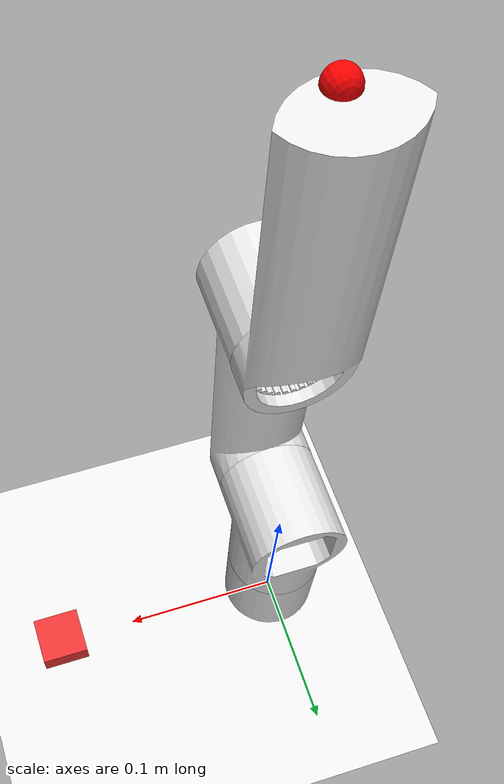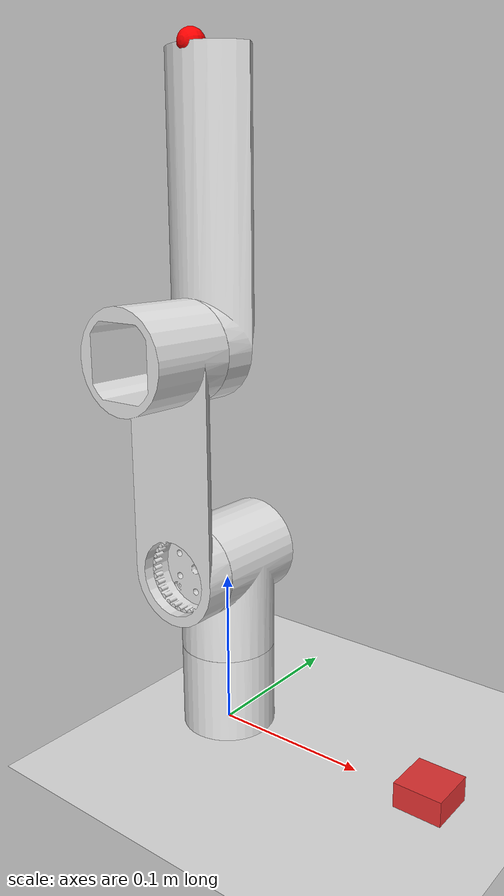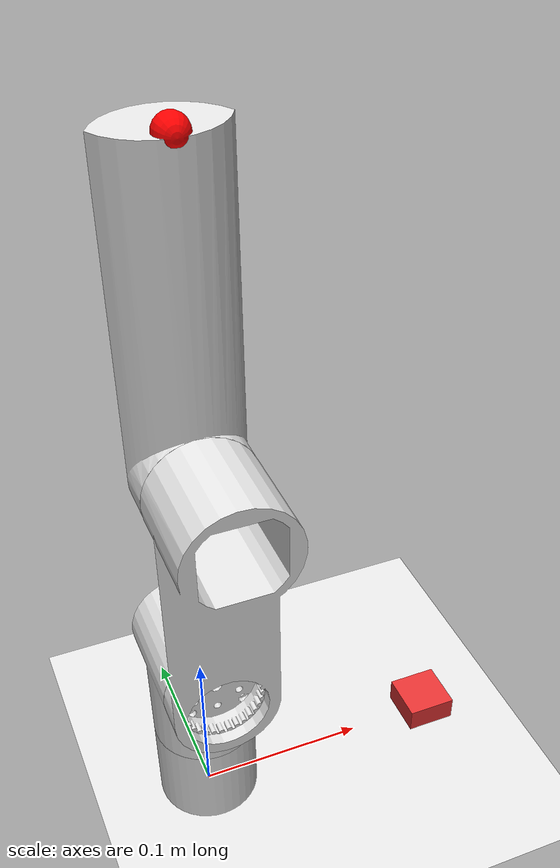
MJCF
<mujoco model="arm-v6-ik">
  <compiler angle="radian" eulerseq="XYZ"/>

  <option gravity="0 0 -9.81" timestep="0.002"/>

  <default>
    <joint damping="0.5" frictionloss="0.05"/>
  </default>

  <asset>
    <mesh name="base_link" content_type="model/stl" file="meshes/base_link.STL"/>
    <mesh name="rotary" content_type="model/stl" file="meshes/rotary.STL"/>
    <mesh name="shoulder" content_type="model/stl" file="meshes/shoulder.STL"/>
    <mesh name="elbow" content_type="model/stl" file="meshes/elbow.STL"/>
  </asset>

  <worldbody>
    <light diffuse="0.8 0.8 0.8" pos="0 0 2" dir="0 0 -1"/>
    <geom name="floor" type="plane" size="1 1 0.05" rgba="0.9 0.9 0.9 1"/>

    <body name="arm_root" pos="0 0 0.05">
      <inertial pos="2.3661e-18 -0.019937 2.4154e-18" mass="0.067122"
                fullinertia="4.1725e-05 4.5278e-05 4.1725e-05 9.8334e-22 6.7643e-22 -5.7814e-21"/>
      <geom type="mesh" rgba="0.89412 0.89412 0.89412 1" mesh="base_link"/>

      <!-- Base yaw: rotates about vertical Z -->
      <body name="rotary" pos="0 0 0" euler="0 0 -1.5708">
        <inertial pos="0.0016484 -5.4453e-07 0.050018" mass="0.11473"
                  fullinertia="0.00011646 0.00011303 7.9819e-05 2.1954e-10 -2.8336e-06 -7.8031e-11"/>
        <joint name="base-rotary" type="hinge" axis="0 0 1" range="-3.14 3.14"/>
        <geom type="mesh" rgba="0.89412 0.89412 0.89412 1" mesh="rotary"/>

        <!-- Shoulder pitch: rotates about a horizontal axis -->
        <body name="shoulder" pos="0.027 0 0.065" euler="0 1.5708 0">
          <inertial pos="-0.085778 7.1453e-07 0.020049" mass="0.16216"
                    fullinertia="7.5801e-05 0.00045993 0.00047777 -2.1107e-09 4.6784e-05 1.0257e-09"/>
          <joint name="shoulder" type="hinge" axis="0 0 1" range="-2.13 2.13"/>
          <geom type="mesh" rgba="0.89412 0.89412 0.89412 1" mesh="shoulder"/>

          <!-- Elbow pitch: rotates about the same horizontal axis direction as shoulder -->
          <body name="elbow" pos="-0.135 0 -0.004" euler="3.1416 0 -1.5708">
            <inertial pos="1.9571e-08 0.087078 0.012121" mass="0.26414"
                      fullinertia="0.00061693 8.3562e-05 0.00064911 1.9089e-10 -1.6288e-10 -2.0211e-05"/>
            <joint name="elbow" type="hinge" axis="0 0 1" range="-3.14 3.14"/>
            <geom type="mesh" rgba="0.89412 0.89412 0.89412 1" mesh="elbow"/>

            <site name="end_effector" pos="0 0.165 0" size="0.008" rgba="1 0 0 1"/>
          </body>
        </body>
      </body>
    </body>

    <!-- Example target object sitting in the workspace -->
    <body name="target_object" pos="0.15 0.0 0.0">
      <freejoint/>
      <geom name="target_geom" type="box" size="0.015 0.015 0.015" rgba="0.9 0.2 0.2 1" mass="0.05"/>
    </body>
  </worldbody>

  <actuator>
    <motor name="motor_base_rotary" joint="base-rotary" ctrlrange="-5 5"/>
    <motor name="motor_shoulder" joint="shoulder" ctrlrange="-13 13"/>
    <motor name="motor_elbow" joint="elbow" ctrlrange="-6.2 6.2"/>
  </actuator>
</mujoco>
